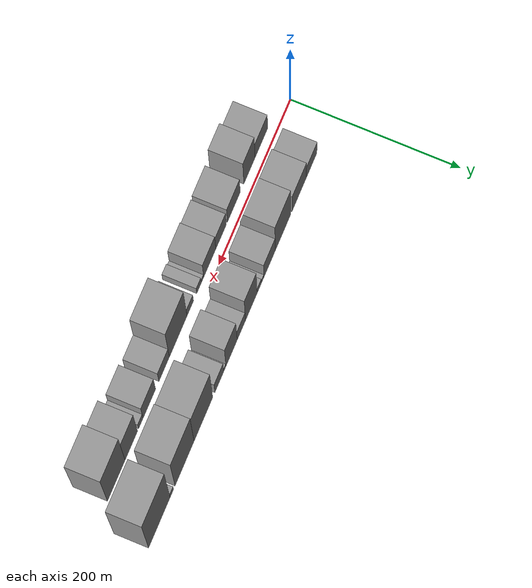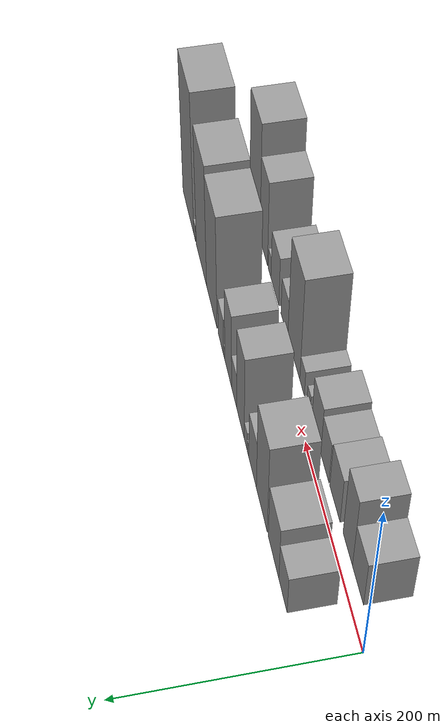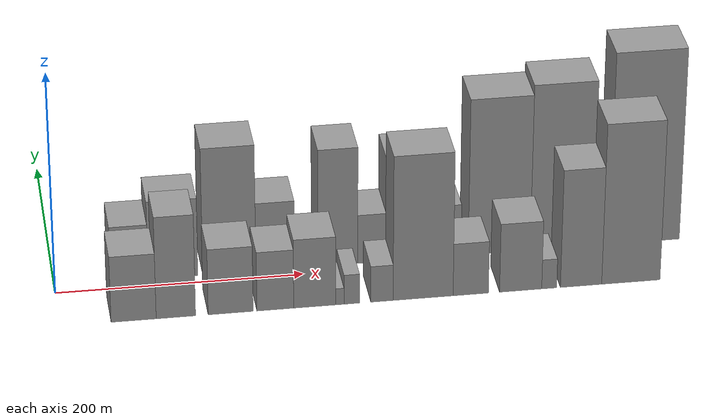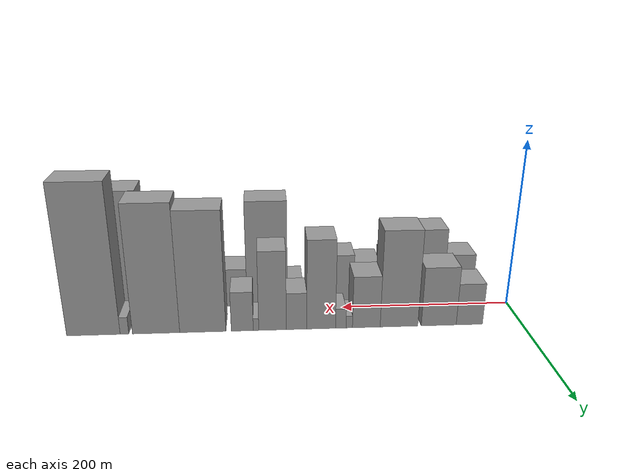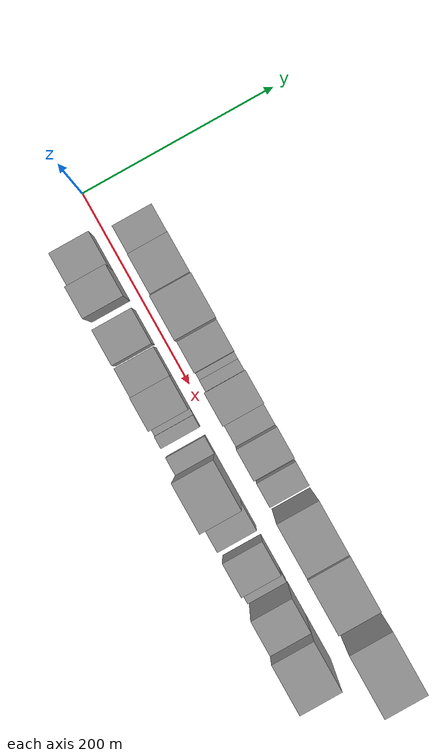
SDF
<sdf version="1.6">
 <world name="default">
  <scene>
   <sky><clouds><speed>12</speed></clouds></sky>
   <ambient>0.4 0.4 0.4 1</ambient>
   <background>0.7 0.7 0.7 1</background>
   <shadows>1</shadows>
  </scene>
  <gravity>0 0 -9.8066</gravity>
  <magnetic_field>6e-06 2.3e-05 -4.2e-05</magnetic_field>
  <physics default="0" name="default_physics" type="ode">
   <ode>
    <solver>
     <type>quick</type>
     <iters>10</iters>
     <sor>1.0</sor>
     <use_dynamic_moi_rescaling>0</use_dynamic_moi_rescaling>
    </solver>
    <constraints>
     <cfm>0</cfm>
     <erp>0.2</erp>
     <contact_max_correcting_vel>100</contact_max_correcting_vel>
     <contact_surface_layer>0.001</contact_surface_layer>
    </constraints>
   </ode>
   <max_step_size>0.004</max_step_size>
   <real_time_factor>1</real_time_factor>
   <real_time_update_rate>250</real_time_update_rate>
  </physics>
  <light name="sun" type="directional">
   <pose>0 0 10 0 0 0</pose>
   <diffuse>0.8 0.8 0.8 1</diffuse>
   <specular>0.2 0.2 0.2 1</specular>
   <attenuation>
    <range>1000</range>
    <constant>0.9</constant>
    <linear>0.01</linear>
    <quadratic>0.001</quadratic>
   </attenuation>
   <direction>-0.5 0.1 -0.9</direction>
  </light>
  <model name="building_1">
   <static>1</static>
   <pose>60.1841 30.0000 0 0.000000 0.000000 1.570796</pose>
   <link name="link">
    <pose>0 0 25.50 0 0 0</pose>
    <collision name="collision"><geometry><box><size>40.0000 30.3682 51.0000</size></box></geometry></collision>
    <visual name="visual">
     <cast_shadows>0</cast_shadows>
     <geometry><box><size>40.0000 30.3682 51.0000</size></box></geometry>
     <material>
      <script>
       <uri>model://grey_wall/materials/scripts</uri>
       <uri>model://grey_wall/materials/textures</uri>
       <name>vrc/grey_wall</name>
      </script>
     </material>
    </visual>
   </link>
  </model>
  <model name="building_2">
   <static>1</static>
   <pose>95.4331 30.0000 0 0.000000 0.000000 1.570796</pose>
   <link name="link">
    <pose>0 0 36.00 0 0 0</pose>
    <collision name="collision"><geometry><box><size>40.0000 40.1299 72.0000</size></box></geometry></collision>
    <visual name="visual">
     <cast_shadows>0</cast_shadows>
     <geometry><box><size>40.0000 40.1299 72.0000</size></box></geometry>
     <material>
      <script>
       <uri>model://grey_wall/materials/scripts</uri>
       <uri>model://grey_wall/materials/textures</uri>
       <name>vrc/grey_wall</name>
      </script>
     </material>
    </visual>
   </link>
  </model>
  <model name="building_3">
   <static>1</static>
   <pose>141.0424 30.0000 0 0.000000 0.000000 1.570796</pose>
   <link name="link">
    <pose>0 0 58.50 0 0 0</pose>
    <collision name="collision"><geometry><box><size>40.0000 43.0886 117.0000</size></box></geometry></collision>
    <visual name="visual">
     <cast_shadows>0</cast_shadows>
     <geometry><box><size>40.0000 43.0886 117.0000</size></box></geometry>
     <material>
      <script>
       <uri>model://grey_wall/materials/scripts</uri>
       <uri>model://grey_wall/materials/textures</uri>
       <name>vrc/grey_wall</name>
      </script>
     </material>
    </visual>
   </link>
  </model>
  <model name="building_4">
   <static>1</static>
   <pose>178.3692 30.0000 0 0.000000 0.000000 1.570796</pose>
   <link name="link">
    <pose>0 0 31.50 0 0 0</pose>
    <collision name="collision"><geometry><box><size>40.0000 31.5652 63.0000</size></box></geometry></collision>
    <visual name="visual">
     <cast_shadows>0</cast_shadows>
     <geometry><box><size>40.0000 31.5652 63.0000</size></box></geometry>
     <material>
      <script>
       <uri>model://grey_wall/materials/scripts</uri>
       <uri>model://grey_wall/materials/textures</uri>
       <name>vrc/grey_wall</name>
      </script>
     </material>
    </visual>
   </link>
  </model>
  <model name="building_5">
   <static>1</static>
   <pose>197.7690 30.0000 0 0.000000 0.000000 1.570796</pose>
   <link name="link">
    <pose>0 0 7.50 0 0 0</pose>
    <collision name="collision"><geometry><box><size>40.0000 7.2344 15.0000</size></box></geometry></collision>
    <visual name="visual">
     <cast_shadows>0</cast_shadows>
     <geometry><box><size>40.0000 7.2344 15.0000</size></box></geometry>
     <material>
      <script>
       <uri>model://grey_wall/materials/scripts</uri>
       <uri>model://grey_wall/materials/textures</uri>
       <name>vrc/grey_wall</name>
      </script>
     </material>
    </visual>
   </link>
  </model>
  <model name="building_6">
   <static>1</static>
   <pose>207.3374 30.0000 0 0.000000 0.000000 1.570796</pose>
   <link name="link">
    <pose>0 0 12.00 0 0 0</pose>
    <collision name="collision"><geometry><box><size>40.0000 11.9024 24.0000</size></box></geometry></collision>
    <visual name="visual">
     <cast_shadows>0</cast_shadows>
     <geometry><box><size>40.0000 11.9024 24.0000</size></box></geometry>
     <material>
      <script>
       <uri>model://grey_wall/materials/scripts</uri>
       <uri>model://grey_wall/materials/textures</uri>
       <name>vrc/grey_wall</name>
      </script>
     </material>
    </visual>
   </link>
  </model>
  <model name="building_7">
   <static>1</static>
   <pose>229.5198 30.0000 0 0.000000 0.000000 1.570796</pose>
   <link name="link">
    <pose>0 0 54.00 0 0 0</pose>
    <collision name="collision"><geometry><box><size>40.0000 32.4624 108.0000</size></box></geometry></collision>
    <visual name="visual">
     <cast_shadows>0</cast_shadows>
     <geometry><box><size>40.0000 32.4624 108.0000</size></box></geometry>
     <material>
      <script>
       <uri>model://grey_wall/materials/scripts</uri>
       <uri>model://grey_wall/materials/textures</uri>
       <name>vrc/grey_wall</name>
      </script>
     </material>
    </visual>
   </link>
  </model>
  <model name="building_8">
   <static>1</static>
   <pose>257.2476 30.0000 0 0.000000 0.000000 1.570796</pose>
   <link name="link">
    <pose>0 0 22.50 0 0 0</pose>
    <collision name="collision"><geometry><box><size>40.0000 22.9931 45.0000</size></box></geometry></collision>
    <visual name="visual">
     <cast_shadows>0</cast_shadows>
     <geometry><box><size>40.0000 22.9931 45.0000</size></box></geometry>
     <material>
      <script>
       <uri>model://grey_wall/materials/scripts</uri>
       <uri>model://grey_wall/materials/textures</uri>
       <name>vrc/grey_wall</name>
      </script>
     </material>
    </visual>
   </link>
  </model>
  <model name="building_9">
   <static>1</static>
   <pose>284.2248 30.0000 0 0.000000 0.000000 1.570796</pose>
   <link name="link">
    <pose>0 0 48.00 0 0 0</pose>
    <collision name="collision"><geometry><box><size>40.0000 30.9614 96.0000</size></box></geometry></collision>
    <visual name="visual">
     <cast_shadows>0</cast_shadows>
     <geometry><box><size>40.0000 30.9614 96.0000</size></box></geometry>
     <material>
      <script>
       <uri>model://grey_wall/materials/scripts</uri>
       <uri>model://grey_wall/materials/textures</uri>
       <name>vrc/grey_wall</name>
      </script>
     </material>
    </visual>
   </link>
  </model>
  <model name="building_10">
   <static>1</static>
   <pose>302.7781 30.0000 0 0.000000 0.000000 1.570796</pose>
   <link name="link">
    <pose>0 0 7.50 0 0 0</pose>
    <collision name="collision"><geometry><box><size>40.0000 6.1452 15.0000</size></box></geometry></collision>
    <visual name="visual">
     <cast_shadows>0</cast_shadows>
     <geometry><box><size>40.0000 6.1452 15.0000</size></box></geometry>
     <material>
      <script>
       <uri>model://grey_wall/materials/scripts</uri>
       <uri>model://grey_wall/materials/textures</uri>
       <name>vrc/grey_wall</name>
      </script>
     </material>
    </visual>
   </link>
  </model>
  <model name="building_11">
   <static>1</static>
   <pose>318.1075 30.0000 0 0.000000 0.000000 1.570796</pose>
   <link name="link">
    <pose>0 0 24.00 0 0 0</pose>
    <collision name="collision"><geometry><box><size>40.0000 24.5138 48.0000</size></box></geometry></collision>
    <visual name="visual">
     <cast_shadows>0</cast_shadows>
     <geometry><box><size>40.0000 24.5138 48.0000</size></box></geometry>
     <material>
      <script>
       <uri>model://grey_wall/materials/scripts</uri>
       <uri>model://grey_wall/materials/textures</uri>
       <name>vrc/grey_wall</name>
      </script>
     </material>
    </visual>
   </link>
  </model>
  <model name="building_12">
   <static>1</static>
   <pose>361.9937 30.0000 0 0.000000 0.000000 1.570796</pose>
   <link name="link">
    <pose>0 0 72.00 0 0 0</pose>
    <collision name="collision"><geometry><box><size>40.0000 51.2584 144.0000</size></box></geometry></collision>
    <visual name="visual">
     <cast_shadows>0</cast_shadows>
     <geometry><box><size>40.0000 51.2584 144.0000</size></box></geometry>
     <material>
      <script>
       <uri>model://grey_wall/materials/scripts</uri>
       <uri>model://grey_wall/materials/textures</uri>
       <name>vrc/grey_wall</name>
      </script>
     </material>
    </visual>
   </link>
  </model>
  <model name="building_13">
   <static>1</static>
   <pose>413.6820 30.0000 0 0.000000 0.000000 1.570796</pose>
   <link name="link">
    <pose>0 0 76.50 0 0 0</pose>
    <collision name="collision"><geometry><box><size>40.0000 52.1183 153.0000</size></box></geometry></collision>
    <visual name="visual">
     <cast_shadows>0</cast_shadows>
     <geometry><box><size>40.0000 52.1183 153.0000</size></box></geometry>
     <material>
      <script>
       <uri>model://grey_wall/materials/scripts</uri>
       <uri>model://grey_wall/materials/textures</uri>
       <name>vrc/grey_wall</name>
      </script>
     </material>
    </visual>
   </link>
  </model>
  <model name="building_14">
   <static>1</static>
   <pose>448.4865 30.0000 0 0.000000 0.000000 1.570796</pose>
   <link name="link">
    <pose>0 0 10.50 0 0 0</pose>
    <collision name="collision"><geometry><box><size>40.0000 9.4907 21.0000</size></box></geometry></collision>
    <visual name="visual">
     <cast_shadows>0</cast_shadows>
     <geometry><box><size>40.0000 9.4907 21.0000</size></box></geometry>
     <material>
      <script>
       <uri>model://grey_wall/materials/scripts</uri>
       <uri>model://grey_wall/materials/textures</uri>
       <name>vrc/grey_wall</name>
      </script>
     </material>
    </visual>
   </link>
  </model>
  <model name="building_15">
   <static>1</static>
   <pose>482.4207 30.0000 0 0.000000 0.000000 1.570796</pose>
   <link name="link">
    <pose>0 0 88.50 0 0 0</pose>
    <collision name="collision"><geometry><box><size>40.0000 58.3776 177.0000</size></box></geometry></collision>
    <visual name="visual">
     <cast_shadows>0</cast_shadows>
     <geometry><box><size>40.0000 58.3776 177.0000</size></box></geometry>
     <material>
      <script>
       <uri>model://grey_wall/materials/scripts</uri>
       <uri>model://grey_wall/materials/textures</uri>
       <name>vrc/grey_wall</name>
      </script>
     </material>
    </visual>
   </link>
  </model>
  <model name="building_16">
   <static>1</static>
   <pose>57.8792 -30.0000 0 0.000000 0.000000 1.570796</pose>
   <link name="link">
    <pose>0 0 30.00 0 0 0</pose>
    <collision name="collision"><geometry><box><size>40.0000 35.7584 60.0000</size></box></geometry></collision>
    <visual name="visual">
     <cast_shadows>0</cast_shadows>
     <geometry><box><size>40.0000 35.7584 60.0000</size></box></geometry>
     <material>
      <script>
       <uri>model://grey_wall/materials/scripts</uri>
       <uri>model://grey_wall/materials/textures</uri>
       <name>vrc/grey_wall</name>
      </script>
     </material>
    </visual>
   </link>
  </model>
  <model name="building_17">
   <static>1</static>
   <pose>91.4149 -30.0000 0 0.000000 0.000000 1.570796</pose>
   <link name="link">
    <pose>0 0 46.50 0 0 0</pose>
    <collision name="collision"><geometry><box><size>40.0000 31.3130 93.0000</size></box></geometry></collision>
    <visual name="visual">
     <cast_shadows>0</cast_shadows>
     <geometry><box><size>40.0000 31.3130 93.0000</size></box></geometry>
     <material>
      <script>
       <uri>model://grey_wall/materials/scripts</uri>
       <uri>model://grey_wall/materials/textures</uri>
       <name>vrc/grey_wall</name>
      </script>
     </material>
    </visual>
   </link>
  </model>
  <model name="building_18">
   <static>1</static>
   <pose>135.0102 -30.0000 0 0.000000 0.000000 1.570796</pose>
   <link name="link">
    <pose>0 0 30.00 0 0 0</pose>
    <collision name="collision"><geometry><box><size>40.0000 35.8777 60.0000</size></box></geometry></collision>
    <visual name="visual">
     <cast_shadows>0</cast_shadows>
     <geometry><box><size>40.0000 35.8777 60.0000</size></box></geometry>
     <material>
      <script>
       <uri>model://grey_wall/materials/scripts</uri>
       <uri>model://grey_wall/materials/textures</uri>
       <name>vrc/grey_wall</name>
      </script>
     </material>
    </visual>
   </link>
  </model>
  <model name="building_19">
   <static>1</static>
   <pose>170.6557 -30.0000 0 0.000000 0.000000 1.570796</pose>
   <link name="link">
    <pose>0 0 27.00 0 0 0</pose>
    <collision name="collision"><geometry><box><size>40.0000 29.4133 54.0000</size></box></geometry></collision>
    <visual name="visual">
     <cast_shadows>0</cast_shadows>
     <geometry><box><size>40.0000 29.4133 54.0000</size></box></geometry>
     <material>
      <script>
       <uri>model://grey_wall/materials/scripts</uri>
       <uri>model://grey_wall/materials/textures</uri>
       <name>vrc/grey_wall</name>
      </script>
     </material>
    </visual>
   </link>
  </model>
  <model name="building_20">
   <static>1</static>
   <pose>202.2260 -30.0000 0 0.000000 0.000000 1.570796</pose>
   <link name="link">
    <pose>0 0 31.50 0 0 0</pose>
    <collision name="collision"><geometry><box><size>40.0000 33.7273 63.0000</size></box></geometry></collision>
    <visual name="visual">
     <cast_shadows>0</cast_shadows>
     <geometry><box><size>40.0000 33.7273 63.0000</size></box></geometry>
     <material>
      <script>
       <uri>model://grey_wall/materials/scripts</uri>
       <uri>model://grey_wall/materials/textures</uri>
       <name>vrc/grey_wall</name>
      </script>
     </material>
    </visual>
   </link>
  </model>
  <model name="building_21">
   <static>1</static>
   <pose>222.4134 -30.0000 0 0.000000 0.000000 1.570796</pose>
   <link name="link">
    <pose>0 0 7.50 0 0 0</pose>
    <collision name="collision"><geometry><box><size>40.0000 6.6476 15.0000</size></box></geometry></collision>
    <visual name="visual">
     <cast_shadows>0</cast_shadows>
     <geometry><box><size>40.0000 6.6476 15.0000</size></box></geometry>
     <material>
      <script>
       <uri>model://grey_wall/materials/scripts</uri>
       <uri>model://grey_wall/materials/textures</uri>
       <name>vrc/grey_wall</name>
      </script>
     </material>
    </visual>
   </link>
  </model>
  <model name="building_22">
   <static>1</static>
   <pose>231.9874 -30.0000 0 0.000000 0.000000 1.570796</pose>
   <link name="link">
    <pose>0 0 13.50 0 0 0</pose>
    <collision name="collision"><geometry><box><size>40.0000 12.5003 27.0000</size></box></geometry></collision>
    <visual name="visual">
     <cast_shadows>0</cast_shadows>
     <geometry><box><size>40.0000 12.5003 27.0000</size></box></geometry>
     <material>
      <script>
       <uri>model://grey_wall/materials/scripts</uri>
       <uri>model://grey_wall/materials/textures</uri>
       <name>vrc/grey_wall</name>
      </script>
     </material>
    </visual>
   </link>
  </model>
  <model name="building_23">
   <static>1</static>
   <pose>256.2343 -30.0000 0 0.000000 0.000000 1.570796</pose>
   <link name="link">
    <pose>0 0 16.50 0 0 0</pose>
    <collision name="collision"><geometry><box><size>40.0000 17.9935 33.0000</size></box></geometry></collision>
    <visual name="visual">
     <cast_shadows>0</cast_shadows>
     <geometry><box><size>40.0000 17.9935 33.0000</size></box></geometry>
     <material>
      <script>
       <uri>model://grey_wall/materials/scripts</uri>
       <uri>model://grey_wall/materials/textures</uri>
       <name>vrc/grey_wall</name>
      </script>
     </material>
    </visual>
   </link>
  </model>
  <model name="building_24">
   <static>1</static>
   <pose>289.4714 -30.0000 0 0.000000 0.000000 1.570796</pose>
   <link name="link">
    <pose>0 0 66.00 0 0 0</pose>
    <collision name="collision"><geometry><box><size>40.0000 48.4808 132.0000</size></box></geometry></collision>
    <visual name="visual">
     <cast_shadows>0</cast_shadows>
     <geometry><box><size>40.0000 48.4808 132.0000</size></box></geometry>
     <material>
      <script>
       <uri>model://grey_wall/materials/scripts</uri>
       <uri>model://grey_wall/materials/textures</uri>
       <name>vrc/grey_wall</name>
      </script>
     </material>
    </visual>
   </link>
  </model>
  <model name="building_25">
   <static>1</static>
   <pose>328.0480 -30.0000 0 0.000000 0.000000 1.570796</pose>
   <link name="link">
    <pose>0 0 24.00 0 0 0</pose>
    <collision name="collision"><geometry><box><size>40.0000 28.6723 48.0000</size></box></geometry></collision>
    <visual name="visual">
     <cast_shadows>0</cast_shadows>
     <geometry><box><size>40.0000 28.6723 48.0000</size></box></geometry>
     <material>
      <script>
       <uri>model://grey_wall/materials/scripts</uri>
       <uri>model://grey_wall/materials/textures</uri>
       <name>vrc/grey_wall</name>
      </script>
     </material>
    </visual>
   </link>
  </model>
  <model name="building_26">
   <static>1</static>
   <pose>368.5275 -30.0000 0 0.000000 0.000000 1.570796</pose>
   <link name="link">
    <pose>0 0 31.50 0 0 0</pose>
    <collision name="collision"><geometry><box><size>40.0000 34.2866 63.0000</size></box></geometry></collision>
    <visual name="visual">
     <cast_shadows>0</cast_shadows>
     <geometry><box><size>40.0000 34.2866 63.0000</size></box></geometry>
     <material>
      <script>
       <uri>model://grey_wall/materials/scripts</uri>
       <uri>model://grey_wall/materials/textures</uri>
       <name>vrc/grey_wall</name>
      </script>
     </material>
    </visual>
   </link>
  </model>
  <model name="building_27">
   <static>1</static>
   <pose>391.7832 -30.0000 0 0.000000 0.000000 1.570796</pose>
   <link name="link">
    <pose>0 0 13.50 0 0 0</pose>
    <collision name="collision"><geometry><box><size>40.0000 12.2248 27.0000</size></box></geometry></collision>
    <visual name="visual">
     <cast_shadows>0</cast_shadows>
     <geometry><box><size>40.0000 12.2248 27.0000</size></box></geometry>
     <material>
      <script>
       <uri>model://grey_wall/materials/scripts</uri>
       <uri>model://grey_wall/materials/textures</uri>
       <name>vrc/grey_wall</name>
      </script>
     </material>
    </visual>
   </link>
  </model>
  <model name="building_28">
   <static>1</static>
   <pose>417.7433 -30.0000 0 0.000000 0.000000 1.570796</pose>
   <link name="link">
    <pose>0 0 54.00 0 0 0</pose>
    <collision name="collision"><geometry><box><size>40.0000 33.6953 108.0000</size></box></geometry></collision>
    <visual name="visual">
     <cast_shadows>0</cast_shadows>
     <geometry><box><size>40.0000 33.6953 108.0000</size></box></geometry>
     <material>
      <script>
       <uri>model://grey_wall/materials/scripts</uri>
       <uri>model://grey_wall/materials/textures</uri>
       <name>vrc/grey_wall</name>
      </script>
     </material>
    </visual>
   </link>
  </model>
  <model name="building_29">
   <static>1</static>
   <pose>458.4725 -30.0000 0 0.000000 0.000000 1.570796</pose>
   <link name="link">
    <pose>0 0 73.50 0 0 0</pose>
    <collision name="collision"><geometry><box><size>40.0000 47.7631 147.0000</size></box></geometry></collision>
    <visual name="visual">
     <cast_shadows>0</cast_shadows>
     <geometry><box><size>40.0000 47.7631 147.0000</size></box></geometry>
     <material>
      <script>
       <uri>model://grey_wall/materials/scripts</uri>
       <uri>model://grey_wall/materials/textures</uri>
       <name>vrc/grey_wall</name>
      </script>
     </material>
    </visual>
   </link>
  </model>
 </world>
</sdf>
